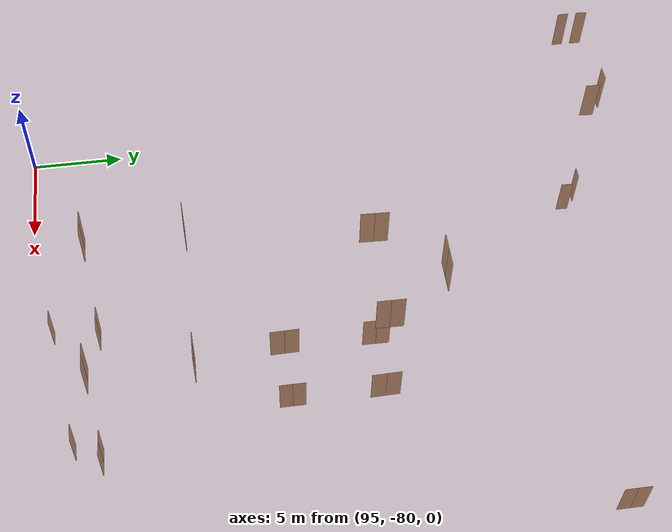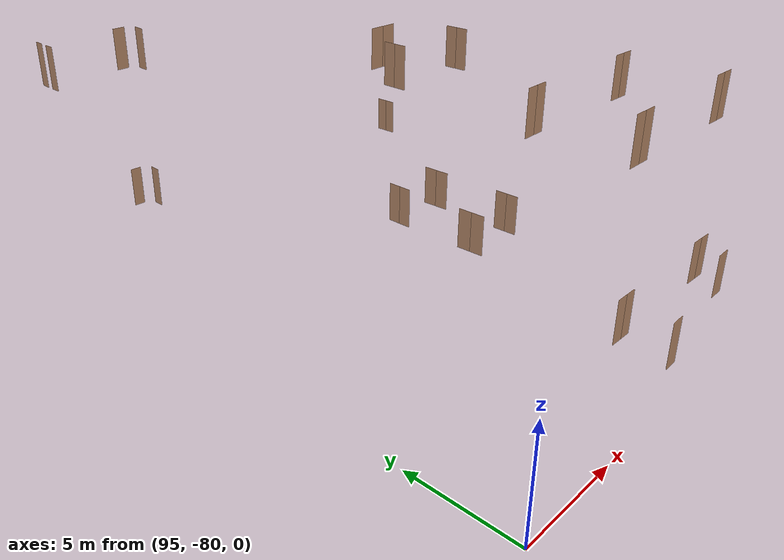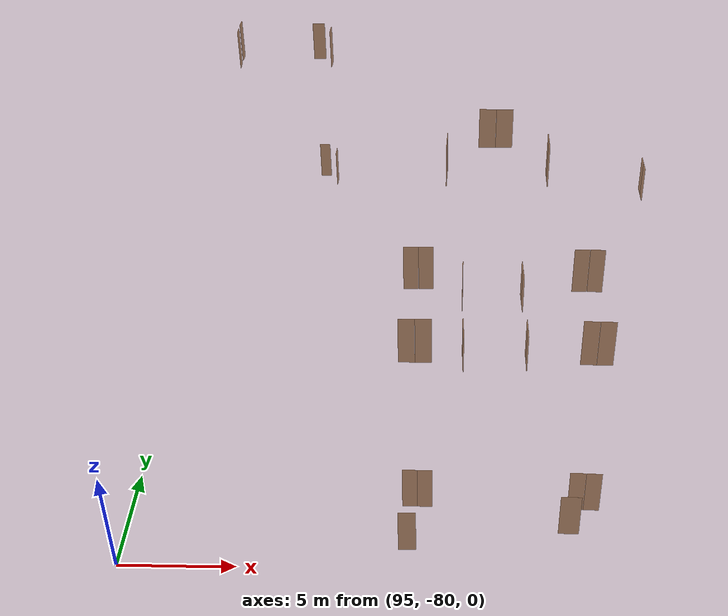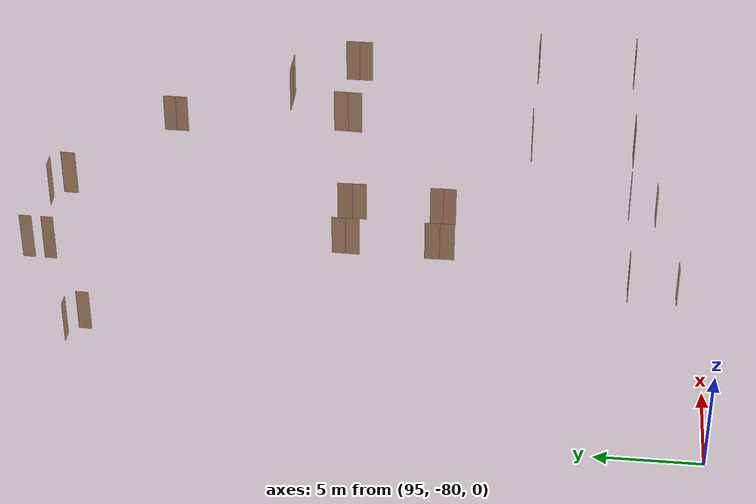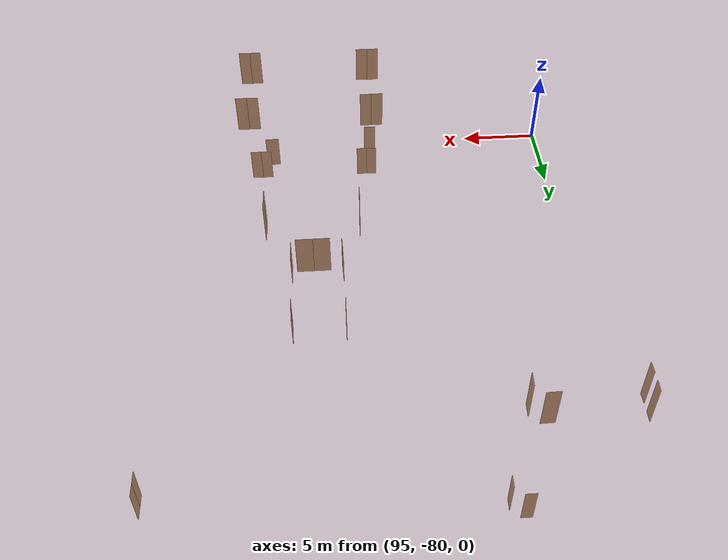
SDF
<sdf version="1.7">
 <world name="sim_world">
  <model name="TD2012CI">
   <pose>101.0331451901359 -49.4272154927263 0.0 0 0 0.0</pose>
   <link name="right">
    <pose>0 0 1.11 0 0 0</pose>
    <visual name="right_visual">
     <geometry><box><size>0.6053715363713843 0.03 2.2</size></box></geometry>
     <material>
      <ambient>0.5 0.25 0 0.6</ambient>
      <diffuse>0.5 0.25 0 0.6</diffuse>
      <pbr><metal><metalness>0.0</metalness></metal></pbr>
     </material>
    </visual>
    <collision name="right_collision">
     <geometry><box><size>0.6053715363713843 0.03 2.2</size></box></geometry>
     <surface><contact><collide_bitmask>0x02</collide_bitmask></contact></surface>
    </collision>
    <inertial>
     <mass>50.0</mass>
     <inertia><ixx>20.17041666666667</ixx><iyy>21.693644571036046</iyy><izz>1.5307279043693762</izz></inertia>
    </inertial>
   </link>
   <joint name="right_joint" type="revolute">
    <parent>world</parent>
    <child>right</child>
    <axis><xyz>0 0 -1</xyz><limit><lower>0</lower><upper>1.57</upper></limit></axis>
    <pose>0.30768576818569215 0 0 0 0 0</pose>
   </joint>
   <plugin name="register_component" filename="libregister_component.so">
    <component name="Door">
     <v_max_door>0.5</v_max_door>
     <a_max_door>0.3</a_max_door>
     <a_nom_door>0.15</a_nom_door>
     <dx_min_door>0.01</dx_min_door>
     <f_max_door>500.0</f_max_door>
     <ros_interface>true</ros_interface>
     <door name="TD2012CI" type="SwingDoor" left_joint_name="empty_joint" right_joint_name="right_joint"/>
    </component>
   </plugin>
  </model>
  <model name="TD2013CA">
   <pose>101.79936882906964 -50.17409163688117 0.0 0 0 1.5413766250854544</pose>
   <link name="right">
    <pose>0 0 1.11 0 0 0</pose>
    <visual name="right_visual">
     <geometry><box><size>0.6332346513899125 0.03 2.2</size></box></geometry>
     <material>
      <ambient>0.5 0.25 0 0.6</ambient>
      <diffuse>0.5 0.25 0 0.6</diffuse>
      <pbr><metal><metalness>0.0</metalness></metal></pbr>
     </material>
    </visual>
    <collision name="right_collision">
     <geometry><box><size>0.6332346513899125 0.03 2.2</size></box></geometry>
     <surface><contact><collide_bitmask>0x02</collide_bitmask></contact></surface>
    </collision>
    <inertial>
     <mass>50.0</mass>
     <inertia><ixx>20.17041666666667</ixx><iyy>21.837442182170438</iyy><izz>1.674525515503767</izz></inertia>
    </inertial>
   </link>
   <joint name="right_joint" type="revolute">
    <parent>world</parent>
    <child>right</child>
    <axis><xyz>0 0 -1</xyz><limit><lower>0</lower><upper>1.57</upper></limit></axis>
    <pose>0.32161732569495627 0 0 0 0 0</pose>
   </joint>
   <plugin name="register_component" filename="libregister_component.so">
    <component name="Door">
     <v_max_door>0.5</v_max_door>
     <a_max_door>0.3</a_max_door>
     <a_nom_door>0.15</a_nom_door>
     <dx_min_door>0.01</dx_min_door>
     <f_max_door>500.0</f_max_door>
     <ros_interface>true</ros_interface>
     <door name="TD2013CA" type="SwingDoor" left_joint_name="empty_joint" right_joint_name="right_joint"/>
    </component>
   </plugin>
  </model>
  <model name="TD2011CP1">
   <pose>120.17686281691562 -51.225544932021194 0.0 0 0 -1.5641731375628034</pose>
   <link name="right">
    <pose>0.3380386731190806 0 1.11 0 0 0</pose>
    <visual name="right_visual">
     <geometry><box><size>0.6660773462381612 0.03 2.2</size></box></geometry>
     <material>
      <ambient>0.5 0.25 0 0.6</ambient>
      <diffuse>0.5 0.25 0 0.6</diffuse>
      <pbr><metal><metalness>0.0</metalness></metal></pbr>
     </material>
    </visual>
    <collision name="right_collision">
     <geometry><box><size>0.6660773462381612 0.03 2.2</size></box></geometry>
     <surface><contact><collide_bitmask>0x02</collide_bitmask></contact></surface>
    </collision>
    <inertial>
     <mass>50.0</mass>
     <inertia><ixx>20.17041666666667</ixx><iyy>22.0152459632153</iyy><izz>1.8523292965486302</izz></inertia>
    </inertial>
   </link>
   <joint name="right_joint" type="revolute">
    <parent>world</parent>
    <child>right</child>
    <axis><xyz>0 0 -1</xyz><limit><lower>0</lower><upper>1.57</upper></limit></axis>
    <pose>0.3380386731190806 0 0 0 0 0</pose>
   </joint>
   <link name="left">
    <pose>-0.3380386731190806 0 1.11 0 0 0</pose>
    <visual name="left_visual">
     <geometry><box><size>0.6660773462381612 0.03 2.2</size></box></geometry>
     <material>
      <ambient>0.5 0.25 0 0.6</ambient>
      <diffuse>0.5 0.25 0 0.6</diffuse>
      <pbr><metal><metalness>0.0</metalness></metal></pbr>
     </material>
    </visual>
    <collision name="left_collision">
     <geometry><box><size>0.6660773462381612 0.03 2.2</size></box></geometry>
     <surface><contact><collide_bitmask>0x02</collide_bitmask></contact></surface>
    </collision>
    <inertial>
     <mass>50.0</mass>
     <inertia><ixx>20.17041666666667</ixx><iyy>22.0152459632153</iyy><izz>1.8523292965486302</izz></inertia>
    </inertial>
   </link>
   <joint name="left_joint" type="revolute">
    <parent>world</parent>
    <child>left</child>
    <axis><xyz>0 0 -1</xyz><limit><lower>-1.57</lower><upper>0</upper></limit></axis>
    <pose>-0.3380386731190806 0 0 0 0 0</pose>
   </joint>
   <plugin name="register_component" filename="libregister_component.so">
    <component name="Door">
     <v_max_door>0.5</v_max_door>
     <a_max_door>0.3</a_max_door>
     <a_nom_door>0.15</a_nom_door>
     <dx_min_door>0.01</dx_min_door>
     <f_max_door>500.0</f_max_door>
     <ros_interface>true</ros_interface>
     <door name="TD2011CP1" type="DoubleSwingDoor" left_joint_name="left_joint" right_joint_name="right_joint"/>
    </component>
   </plugin>
  </model>
  <model name="TD2003AA">
   <pose>109.39467455781474 -62.08049952299339 0.0 0 0 -1.5804696773764422</pose>
   <link name="right">
    <pose>0.3555885767495707 0 1.11 0 0 0</pose>
    <visual name="right_visual">
     <geometry><box><size>0.7011771534991413 0.03 2.2</size></box></geometry>
     <material>
      <ambient>0.5 0.25 0 0.6</ambient>
      <diffuse>0.5 0.25 0 0.6</diffuse>
      <pbr><metal><metalness>0.0</metalness></metal></pbr>
     </material>
    </visual>
    <collision name="right_collision">
     <geometry><box><size>0.7011771534991413 0.03 2.2</size></box></geometry>
     <surface><contact><collide_bitmask>0x02</collide_bitmask></contact></surface>
    </collision>
    <inertial>
     <mass>50.0</mass>
     <inertia><ixx>20.17041666666667</ixx><iyy>22.215205835788165</iyy><izz>2.0522891691214937</izz></inertia>
    </inertial>
   </link>
   <joint name="right_joint" type="revolute">
    <parent>world</parent>
    <child>right</child>
    <axis><xyz>0 0 -1</xyz><limit><lower>0</lower><upper>1.57</upper></limit></axis>
    <pose>0.3555885767495707 0 0 0 0 0</pose>
   </joint>
   <link name="left">
    <pose>-0.3555885767495707 0 1.11 0 0 0</pose>
    <visual name="left_visual">
     <geometry><box><size>0.7011771534991413 0.03 2.2</size></box></geometry>
     <material>
      <ambient>0.5 0.25 0 0.6</ambient>
      <diffuse>0.5 0.25 0 0.6</diffuse>
      <pbr><metal><metalness>0.0</metalness></metal></pbr>
     </material>
    </visual>
    <collision name="left_collision">
     <geometry><box><size>0.7011771534991413 0.03 2.2</size></box></geometry>
     <surface><contact><collide_bitmask>0x02</collide_bitmask></contact></surface>
    </collision>
    <inertial>
     <mass>50.0</mass>
     <inertia><ixx>20.17041666666667</ixx><iyy>22.215205835788165</iyy><izz>2.0522891691214937</izz></inertia>
    </inertial>
   </link>
   <joint name="left_joint" type="revolute">
    <parent>world</parent>
    <child>left</child>
    <axis><xyz>0 0 -1</xyz><limit><lower>-1.57</lower><upper>0</upper></limit></axis>
    <pose>-0.3555885767495707 0 0 0 0 0</pose>
   </joint>
   <plugin name="register_component" filename="libregister_component.so">
    <component name="Door">
     <v_max_door>0.5</v_max_door>
     <a_max_door>0.3</a_max_door>
     <a_nom_door>0.15</a_nom_door>
     <dx_min_door>0.01</dx_min_door>
     <f_max_door>500.0</f_max_door>
     <ros_interface>true</ros_interface>
     <door name="TD2003AA" type="DoubleSwingDoor" left_joint_name="left_joint" right_joint_name="right_joint"/>
    </component>
   </plugin>
  </model>
  <model name="TD2002AA">
   <pose>112.55227772977256 -62.0532626495431 0.0 0 0 1.5980504964411408</pose>
   <link name="right">
    <pose>0.384640636116833 0 1.11 0 0 0</pose>
    <visual name="right_visual">
     <geometry><box><size>0.759281272233666 0.03 2.2</size></box></geometry>
     <material>
      <ambient>0.5 0.25 0 0.6</ambient>
      <diffuse>0.5 0.25 0 0.6</diffuse>
      <pbr><metal><metalness>0.0</metalness></metal></pbr>
     </material>
    </visual>
    <collision name="right_collision">
     <geometry><box><size>0.759281272233666 0.03 2.2</size></box></geometry>
     <surface><contact><collide_bitmask>0x02</collide_bitmask></contact></surface>
    </collision>
    <inertial>
     <mass>50.0</mass>
     <inertia><ixx>20.17041666666667</ixx><iyy>22.568783543186562</iyy><izz>2.405866876519894</izz></inertia>
    </inertial>
   </link>
   <joint name="right_joint" type="revolute">
    <parent>world</parent>
    <child>right</child>
    <axis><xyz>0 0 -1</xyz><limit><lower>0</lower><upper>1.57</upper></limit></axis>
    <pose>0.384640636116833 0 0 0 0 0</pose>
   </joint>
   <link name="left">
    <pose>-0.384640636116833 0 1.11 0 0 0</pose>
    <visual name="left_visual">
     <geometry><box><size>0.759281272233666 0.03 2.2</size></box></geometry>
     <material>
      <ambient>0.5 0.25 0 0.6</ambient>
      <diffuse>0.5 0.25 0 0.6</diffuse>
      <pbr><metal><metalness>0.0</metalness></metal></pbr>
     </material>
    </visual>
    <collision name="left_collision">
     <geometry><box><size>0.759281272233666 0.03 2.2</size></box></geometry>
     <surface><contact><collide_bitmask>0x02</collide_bitmask></contact></surface>
    </collision>
    <inertial>
     <mass>50.0</mass>
     <inertia><ixx>20.17041666666667</ixx><iyy>22.568783543186562</iyy><izz>2.405866876519894</izz></inertia>
    </inertial>
   </link>
   <joint name="left_joint" type="revolute">
    <parent>world</parent>
    <child>left</child>
    <axis><xyz>0 0 -1</xyz><limit><lower>-1.57</lower><upper>0</upper></limit></axis>
    <pose>-0.384640636116833 0 0 0 0 0</pose>
   </joint>
   <plugin name="register_component" filename="libregister_component.so">
    <component name="Door">
     <v_max_door>0.5</v_max_door>
     <a_max_door>0.3</a_max_door>
     <a_nom_door>0.15</a_nom_door>
     <dx_min_door>0.01</dx_min_door>
     <f_max_door>500.0</f_max_door>
     <ros_interface>true</ros_interface>
     <door name="TD2002AA" type="DoubleSwingDoor" left_joint_name="left_joint" right_joint_name="right_joint"/>
    </component>
   </plugin>
  </model>
  <model name="TD2048AA">
   <pose>109.40632345548323 -66.90460207556437 0.0 0 0 -1.5465537573246375</pose>
   <link name="right">
    <pose>0.3821804307386069 0 1.11 0 0 0</pose>
    <visual name="right_visual">
     <geometry><box><size>0.7543608614772138 0.03 2.2</size></box></geometry>
     <material>
      <ambient>0.5 0.25 0 0.6</ambient>
      <diffuse>0.5 0.25 0 0.6</diffuse>
      <pbr><metal><metalness>0.0</metalness></metal></pbr>
     </material>
    </visual>
    <collision name="right_collision">
     <geometry><box><size>0.7543608614772138 0.03 2.2</size></box></geometry>
     <surface><contact><collide_bitmask>0x02</collide_bitmask></contact></surface>
    </collision>
    <inertial>
     <mass>50.0</mass>
     <inertia><ixx>20.17041666666667</ixx><iyy>22.537751288869355</iyy><izz>2.3748346222026844</izz></inertia>
    </inertial>
   </link>
   <joint name="right_joint" type="revolute">
    <parent>world</parent>
    <child>right</child>
    <axis><xyz>0 0 -1</xyz><limit><lower>0</lower><upper>1.57</upper></limit></axis>
    <pose>0.3821804307386069 0 0 0 0 0</pose>
   </joint>
   <link name="left">
    <pose>-0.3821804307386069 0 1.11 0 0 0</pose>
    <visual name="left_visual">
     <geometry><box><size>0.7543608614772138 0.03 2.2</size></box></geometry>
     <material>
      <ambient>0.5 0.25 0 0.6</ambient>
      <diffuse>0.5 0.25 0 0.6</diffuse>
      <pbr><metal><metalness>0.0</metalness></metal></pbr>
     </material>
    </visual>
    <collision name="left_collision">
     <geometry><box><size>0.7543608614772138 0.03 2.2</size></box></geometry>
     <surface><contact><collide_bitmask>0x02</collide_bitmask></contact></surface>
    </collision>
    <inertial>
     <mass>50.0</mass>
     <inertia><ixx>20.17041666666667</ixx><iyy>22.537751288869355</iyy><izz>2.3748346222026844</izz></inertia>
    </inertial>
   </link>
   <joint name="left_joint" type="revolute">
    <parent>world</parent>
    <child>left</child>
    <axis><xyz>0 0 -1</xyz><limit><lower>-1.57</lower><upper>0</upper></limit></axis>
    <pose>-0.3821804307386069 0 0 0 0 0</pose>
   </joint>
   <plugin name="register_component" filename="libregister_component.so">
    <component name="Door">
     <v_max_door>0.5</v_max_door>
     <a_max_door>0.3</a_max_door>
     <a_nom_door>0.15</a_nom_door>
     <dx_min_door>0.01</dx_min_door>
     <f_max_door>500.0</f_max_door>
     <ros_interface>true</ros_interface>
     <door name="TD2048AA" type="DoubleSwingDoor" left_joint_name="left_joint" right_joint_name="right_joint"/>
    </component>
   </plugin>
  </model>
  <model name="TD2047AA">
   <pose>112.57834746896705 -66.83982612436739 0.0 0 0 1.5783168461663433</pose>
   <link name="right">
    <pose>0.33948855459902605 0 1.11 0 0 0</pose>
    <visual name="right_visual">
     <geometry><box><size>0.6689771091980521 0.03 2.2</size></box></geometry>
     <material>
      <ambient>0.5 0.25 0 0.6</ambient>
      <diffuse>0.5 0.25 0 0.6</diffuse>
      <pbr><metal><metalness>0.0</metalness></metal></pbr>
     </material>
    </visual>
    <collision name="right_collision">
     <geometry><box><size>0.6689771091980521 0.03 2.2</size></box></geometry>
     <surface><contact><collide_bitmask>0x02</collide_bitmask></contact></surface>
    </collision>
    <inertial>
     <mass>50.0</mass>
     <inertia><ixx>20.17041666666667</ixx><iyy>22.031376552629098</iyy><izz>1.8684598859624273</izz></inertia>
    </inertial>
   </link>
   <joint name="right_joint" type="revolute">
    <parent>world</parent>
    <child>right</child>
    <axis><xyz>0 0 -1</xyz><limit><lower>0</lower><upper>1.57</upper></limit></axis>
    <pose>0.33948855459902605 0 0 0 0 0</pose>
   </joint>
   <link name="left">
    <pose>-0.33948855459902605 0 1.11 0 0 0</pose>
    <visual name="left_visual">
     <geometry><box><size>0.6689771091980521 0.03 2.2</size></box></geometry>
     <material>
      <ambient>0.5 0.25 0 0.6</ambient>
      <diffuse>0.5 0.25 0 0.6</diffuse>
      <pbr><metal><metalness>0.0</metalness></metal></pbr>
     </material>
    </visual>
    <collision name="left_collision">
     <geometry><box><size>0.6689771091980521 0.03 2.2</size></box></geometry>
     <surface><contact><collide_bitmask>0x02</collide_bitmask></contact></surface>
    </collision>
    <inertial>
     <mass>50.0</mass>
     <inertia><ixx>20.17041666666667</ixx><iyy>22.031376552629098</iyy><izz>1.8684598859624273</izz></inertia>
    </inertial>
   </link>
   <joint name="left_joint" type="revolute">
    <parent>world</parent>
    <child>left</child>
    <axis><xyz>0 0 -1</xyz><limit><lower>-1.57</lower><upper>0</upper></limit></axis>
    <pose>-0.33948855459902605 0 0 0 0 0</pose>
   </joint>
   <plugin name="register_component" filename="libregister_component.so">
    <component name="Door">
     <v_max_door>0.5</v_max_door>
     <a_max_door>0.3</a_max_door>
     <a_nom_door>0.15</a_nom_door>
     <dx_min_door>0.01</dx_min_door>
     <f_max_door>500.0</f_max_door>
     <ros_interface>true</ros_interface>
     <door name="TD2047AA" type="DoubleSwingDoor" left_joint_name="left_joint" right_joint_name="right_joint"/>
    </component>
   </plugin>
  </model>
  <model name="TD2006CI">
   <pose>107.39730383812659 -76.51110457595095 0.0 0 0 -0.01999491726999864</pose>
   <link name="right">
    <pose>0.32499401817698503 0 1.11 0 0 0</pose>
    <visual name="right_visual">
     <geometry><box><size>0.6399880363539701 0.03 2.2</size></box></geometry>
     <material>
      <ambient>0.5 0.25 0 0.6</ambient>
      <diffuse>0.5 0.25 0 0.6</diffuse>
      <pbr><metal><metalness>0.0</metalness></metal></pbr>
     </material>
    </visual>
    <collision name="right_collision">
     <geometry><box><size>0.6399880363539701 0.03 2.2</size></box></geometry>
     <surface><contact><collide_bitmask>0x02</collide_bitmask></contact></surface>
    </collision>
    <inertial>
     <mass>50.0</mass>
     <inertia><ixx>20.17041666666667</ixx><iyy>21.87326952781755</iyy><izz>1.7103528611508774</izz></inertia>
    </inertial>
   </link>
   <joint name="right_joint" type="revolute">
    <parent>world</parent>
    <child>right</child>
    <axis><xyz>0 0 -1</xyz><limit><lower>0</lower><upper>1.57</upper></limit></axis>
    <pose>0.32499401817698503 0 0 0 0 0</pose>
   </joint>
   <link name="left">
    <pose>-0.32499401817698503 0 1.11 0 0 0</pose>
    <visual name="left_visual">
     <geometry><box><size>0.6399880363539701 0.03 2.2</size></box></geometry>
     <material>
      <ambient>0.5 0.25 0 0.6</ambient>
      <diffuse>0.5 0.25 0 0.6</diffuse>
      <pbr><metal><metalness>0.0</metalness></metal></pbr>
     </material>
    </visual>
    <collision name="left_collision">
     <geometry><box><size>0.6399880363539701 0.03 2.2</size></box></geometry>
     <surface><contact><collide_bitmask>0x02</collide_bitmask></contact></surface>
    </collision>
    <inertial>
     <mass>50.0</mass>
     <inertia><ixx>20.17041666666667</ixx><iyy>21.87326952781755</iyy><izz>1.7103528611508774</izz></inertia>
    </inertial>
   </link>
   <joint name="left_joint" type="revolute">
    <parent>world</parent>
    <child>left</child>
    <axis><xyz>0 0 -1</xyz><limit><lower>-1.57</lower><upper>0</upper></limit></axis>
    <pose>-0.32499401817698503 0 0 0 0 0</pose>
   </joint>
   <plugin name="register_component" filename="libregister_component.so">
    <component name="Door">
     <v_max_door>0.5</v_max_door>
     <a_max_door>0.3</a_max_door>
     <a_nom_door>0.15</a_nom_door>
     <dx_min_door>0.01</dx_min_door>
     <f_max_door>500.0</f_max_door>
     <ros_interface>true</ros_interface>
     <door name="TD2006CI" type="DoubleSwingDoor" left_joint_name="left_joint" right_joint_name="right_joint"/>
    </component>
   </plugin>
  </model>
  <model name="TD2004CI">
   <pose>107.03772548533681 -78.92855384816954 0.0 0 0 -3.1301002756277767</pose>
   <link name="right">
    <pose>0 0 1.11 0 0 0</pose>
    <visual name="right_visual">
     <geometry><box><size>0.7438838438732581 0.03 2.2</size></box></geometry>
     <material>
      <ambient>0.5 0.25 0 0.6</ambient>
      <diffuse>0.5 0.25 0 0.6</diffuse>
      <pbr><metal><metalness>0.0</metalness></metal></pbr>
     </material>
    </visual>
    <collision name="right_collision">
     <geometry><box><size>0.7438838438732581 0.03 2.2</size></box></geometry>
     <surface><contact><collide_bitmask>0x02</collide_bitmask></contact></surface>
    </collision>
    <inertial>
     <mass>50.0</mass>
     <inertia><ixx>20.17041666666667</ixx><iyy>22.47234655489856</iyy><izz>2.3094298882318913</izz></inertia>
    </inertial>
   </link>
   <joint name="right_joint" type="revolute">
    <parent>world</parent>
    <child>right</child>
    <axis><xyz>0 0 1</xyz><limit><lower>0</lower><upper>1.57</upper></limit></axis>
    <pose>0.37694192193662907 0 0 0 0 0</pose>
   </joint>
   <plugin name="register_component" filename="libregister_component.so">
    <component name="Door">
     <v_max_door>0.5</v_max_door>
     <a_max_door>0.3</a_max_door>
     <a_nom_door>0.15</a_nom_door>
     <dx_min_door>0.01</dx_min_door>
     <f_max_door>500.0</f_max_door>
     <ros_interface>true</ros_interface>
     <door name="TD2004CI" type="SwingDoor" left_joint_name="empty_joint" right_joint_name="right_joint"/>
    </component>
   </plugin>
  </model>
  <model name="TD2007CI">
   <pose>113.87501118227308 -77.92768011159583 0.0 0 0 -3.130096002835818</pose>
   <link name="right">
    <pose>0 0 1.11 0 0 0</pose>
    <visual name="right_visual">
     <geometry><box><size>0.8783152083204939 0.03 2.2</size></box></geometry>
     <material>
      <ambient>0.5 0.25 0 0.6</ambient>
      <diffuse>0.5 0.25 0 0.6</diffuse>
      <pbr><metal><metalness>0.0</metalness></metal></pbr>
     </material>
    </visual>
    <collision name="right_collision">
     <geometry><box><size>0.8783152083204939 0.03 2.2</size></box></geometry>
     <surface><contact><collide_bitmask>0x02</collide_bitmask></contact></surface>
    </collision>
    <inertial>
     <mass>50.0</mass>
     <inertia><ixx>20.17041666666667</ixx><iyy>23.380990021529474</iyy><izz>3.2180733548628027</izz></inertia>
    </inertial>
   </link>
   <joint name="right_joint" type="revolute">
    <parent>world</parent>
    <child>right</child>
    <axis><xyz>0 0 1</xyz><limit><lower>0</lower><upper>1.57</upper></limit></axis>
    <pose>0.44415760416024697 0 0 0 0 0</pose>
   </joint>
   <plugin name="register_component" filename="libregister_component.so">
    <component name="Door">
     <v_max_door>0.5</v_max_door>
     <a_max_door>0.3</a_max_door>
     <a_nom_door>0.15</a_nom_door>
     <dx_min_door>0.01</dx_min_door>
     <f_max_door>500.0</f_max_door>
     <ros_interface>true</ros_interface>
     <door name="TD2007CI" type="SwingDoor" left_joint_name="empty_joint" right_joint_name="right_joint"/>
    </component>
   </plugin>
  </model>
  <model name="TD2010CP">
   <pose>114.61010375942227 -76.55956309245626 0.0 0 0 -0.03701349063309876</pose>
   <link name="right">
    <pose>0.3448157269059257 0 1.11 0 0 0</pose>
    <visual name="right_visual">
     <geometry><box><size>0.6796314538118514 0.03 2.2</size></box></geometry>
     <material>
      <ambient>0.5 0.25 0 0.6</ambient>
      <diffuse>0.5 0.25 0 0.6</diffuse>
      <pbr><metal><metalness>0.0</metalness></metal></pbr>
     </material>
    </visual>
    <collision name="right_collision">
     <geometry><box><size>0.6796314538118514 0.03 2.2</size></box></geometry>
     <surface><contact><collide_bitmask>0x02</collide_bitmask></contact></surface>
    </collision>
    <inertial>
     <mass>50.0</mass>
     <inertia><ixx>20.17041666666667</ixx><iyy>22.091245470876718</iyy><izz>1.928328804210045</izz></inertia>
    </inertial>
   </link>
   <joint name="right_joint" type="revolute">
    <parent>world</parent>
    <child>right</child>
    <axis><xyz>0 0 -1</xyz><limit><lower>0</lower><upper>1.57</upper></limit></axis>
    <pose>0.3448157269059257 0 0 0 0 0</pose>
   </joint>
   <link name="left">
    <pose>-0.3448157269059257 0 1.11 0 0 0</pose>
    <visual name="left_visual">
     <geometry><box><size>0.6796314538118514 0.03 2.2</size></box></geometry>
     <material>
      <ambient>0.5 0.25 0 0.6</ambient>
      <diffuse>0.5 0.25 0 0.6</diffuse>
      <pbr><metal><metalness>0.0</metalness></metal></pbr>
     </material>
    </visual>
    <collision name="left_collision">
     <geometry><box><size>0.6796314538118514 0.03 2.2</size></box></geometry>
     <surface><contact><collide_bitmask>0x02</collide_bitmask></contact></surface>
    </collision>
    <inertial>
     <mass>50.0</mass>
     <inertia><ixx>20.17041666666667</ixx><iyy>22.091245470876718</iyy><izz>1.928328804210045</izz></inertia>
    </inertial>
   </link>
   <joint name="left_joint" type="revolute">
    <parent>world</parent>
    <child>left</child>
    <axis><xyz>0 0 -1</xyz><limit><lower>-1.57</lower><upper>0</upper></limit></axis>
    <pose>-0.3448157269059257 0 0 0 0 0</pose>
   </joint>
   <plugin name="register_component" filename="libregister_component.so">
    <component name="Door">
     <v_max_door>0.5</v_max_door>
     <a_max_door>0.3</a_max_door>
     <a_nom_door>0.15</a_nom_door>
     <dx_min_door>0.01</dx_min_door>
     <f_max_door>500.0</f_max_door>
     <ros_interface>true</ros_interface>
     <door name="TD2010CP" type="DoubleSwingDoor" left_joint_name="left_joint" right_joint_name="right_joint"/>
    </component>
   </plugin>
  </model>
  <model name="bano19">
   <pose>96.61283543717667 -49.501921607688836 8.0 0 0 1.5239625312499971</pose>
   <link name="right">
    <pose>0 0 1.11 0 0 0</pose>
    <visual name="right_visual">
     <geometry><box><size>0.5516831153719108 0.03 2.2</size></box></geometry>
     <material>
      <ambient>0.5 0.25 0 0.6</ambient>
      <diffuse>0.5 0.25 0 0.6</diffuse>
      <pbr><metal><metalness>0.0</metalness></metal></pbr>
     </material>
    </visual>
    <collision name="right_collision">
     <geometry><box><size>0.5516831153719108 0.03 2.2</size></box></geometry>
     <surface><contact><collide_bitmask>0x02</collide_bitmask></contact></surface>
    </collision>
    <inertial>
     <mass>50.0</mass>
     <inertia><ixx>20.17041666666667</ixx><iyy>21.43480941577691</iyy><izz>1.271892749110238</izz></inertia>
    </inertial>
   </link>
   <joint name="right_joint" type="revolute">
    <parent>world</parent>
    <child>right</child>
    <axis><xyz>0 0 1</xyz><limit><lower>0</lower><upper>1.57</upper></limit></axis>
    <pose>0.2808415576859554 0 0 0 0 0</pose>
   </joint>
   <plugin name="register_component" filename="libregister_component.so">
    <component name="Door">
     <v_max_door>0.5</v_max_door>
     <a_max_door>0.3</a_max_door>
     <a_nom_door>0.15</a_nom_door>
     <dx_min_door>0.01</dx_min_door>
     <f_max_door>500.0</f_max_door>
     <ros_interface>true</ros_interface>
     <door name="bano19" type="SwingDoor" left_joint_name="empty_joint" right_joint_name="right_joint"/>
    </component>
   </plugin>
  </model>
  <model name="bano20">
   <pose>96.60297657312375 -50.4766449259702 8.0 0 0 1.5826926319735042</pose>
   <link name="right">
    <pose>0 0 1.11 0 0 0</pose>
    <visual name="right_visual">
     <geometry><box><size>0.5302247300390378 0.03 2.2</size></box></geometry>
     <material>
      <ambient>0.5 0.25 0 0.6</ambient>
      <diffuse>0.5 0.25 0 0.6</diffuse>
      <pbr><metal><metalness>0.0</metalness></metal></pbr>
     </material>
    </visual>
    <collision name="right_collision">
     <geometry><box><size>0.5302247300390378 0.03 2.2</size></box></geometry>
     <surface><contact><collide_bitmask>0x02</collide_bitmask></contact></surface>
    </collision>
    <inertial>
     <mass>50.0</mass>
     <inertia><ixx>20.17041666666667</ixx><iyy>21.33807610143738</iyy><izz>1.1751594347707106</izz></inertia>
    </inertial>
   </link>
   <joint name="right_joint" type="revolute">
    <parent>world</parent>
    <child>right</child>
    <axis><xyz>0 0 1</xyz><limit><lower>0</lower><upper>1.57</upper></limit></axis>
    <pose>0.2701123650195189 0 0 0 0 0</pose>
   </joint>
   <plugin name="register_component" filename="libregister_component.so">
    <component name="Door">
     <v_max_door>0.5</v_max_door>
     <a_max_door>0.3</a_max_door>
     <a_nom_door>0.15</a_nom_door>
     <dx_min_door>0.01</dx_min_door>
     <f_max_door>500.0</f_max_door>
     <ros_interface>true</ros_interface>
     <door name="bano20" type="SwingDoor" left_joint_name="empty_joint" right_joint_name="right_joint"/>
    </component>
   </plugin>
  </model>
  <model name="TD2107AL1">
   <pose>113.41431357541177 -62.38264448825677 8.0 0 0 1.5657095291341885</pose>
   <link name="right">
    <pose>0.33248173329182623 0 1.11 0 0 0</pose>
    <visual name="right_visual">
     <geometry><box><size>0.6549634665836525 0.03 2.2</size></box></geometry>
     <material>
      <ambient>0.5 0.25 0 0.6</ambient>
      <diffuse>0.5 0.25 0 0.6</diffuse>
      <pbr><metal><metalness>0.0</metalness></metal></pbr>
     </material>
    </visual>
    <collision name="right_collision">
     <geometry><box><size>0.6549634665836525 0.03 2.2</size></box></geometry>
     <surface><contact><collide_bitmask>0x02</collide_bitmask></contact></surface>
    </collision>
    <inertial>
     <mass>50.0</mass>
     <inertia><ixx>20.17041666666667</ixx><iyy>21.95407142733032</iyy><izz>1.7911547606636469</izz></inertia>
    </inertial>
   </link>
   <joint name="right_joint" type="revolute">
    <parent>world</parent>
    <child>right</child>
    <axis><xyz>0 0 -1</xyz><limit><lower>0</lower><upper>1.57</upper></limit></axis>
    <pose>0.33248173329182623 0 0 0 0 0</pose>
   </joint>
   <link name="left">
    <pose>-0.33248173329182623 0 1.11 0 0 0</pose>
    <visual name="left_visual">
     <geometry><box><size>0.6549634665836525 0.03 2.2</size></box></geometry>
     <material>
      <ambient>0.5 0.25 0 0.6</ambient>
      <diffuse>0.5 0.25 0 0.6</diffuse>
      <pbr><metal><metalness>0.0</metalness></metal></pbr>
     </material>
    </visual>
    <collision name="left_collision">
     <geometry><box><size>0.6549634665836525 0.03 2.2</size></box></geometry>
     <surface><contact><collide_bitmask>0x02</collide_bitmask></contact></surface>
    </collision>
    <inertial>
     <mass>50.0</mass>
     <inertia><ixx>20.17041666666667</ixx><iyy>21.95407142733032</iyy><izz>1.7911547606636469</izz></inertia>
    </inertial>
   </link>
   <joint name="left_joint" type="revolute">
    <parent>world</parent>
    <child>left</child>
    <axis><xyz>0 0 -1</xyz><limit><lower>-1.57</lower><upper>0</upper></limit></axis>
    <pose>-0.33248173329182623 0 0 0 0 0</pose>
   </joint>
   <plugin name="register_component" filename="libregister_component.so">
    <component name="Door">
     <v_max_door>0.5</v_max_door>
     <a_max_door>0.3</a_max_door>
     <a_nom_door>0.15</a_nom_door>
     <dx_min_door>0.01</dx_min_door>
     <f_max_door>500.0</f_max_door>
     <ros_interface>true</ros_interface>
     <door name="TD2107AL1" type="DoubleSwingDoor" left_joint_name="left_joint" right_joint_name="right_joint"/>
    </component>
   </plugin>
  </model>
  <model name="TD2107AL2">
   <pose>114.6058632095701 -71.40141686040613 8.0 0 0 3.125722063086298</pose>
   <link name="right">
    <pose>0.3272724999890475 0 1.11 0 0 0</pose>
    <visual name="right_visual">
     <geometry><box><size>0.644544999978095 0.03 2.2</size></box></geometry>
     <material>
      <ambient>0.5 0.25 0 0.6</ambient>
      <diffuse>0.5 0.25 0 0.6</diffuse>
      <pbr><metal><metalness>0.0</metalness></metal></pbr>
     </material>
    </visual>
    <collision name="right_collision">
     <geometry><box><size>0.644544999978095 0.03 2.2</size></box></geometry>
     <surface><contact><collide_bitmask>0x02</collide_bitmask></contact></surface>
    </collision>
    <inertial>
     <mass>50.0</mass>
     <inertia><ixx>20.17041666666667</ixx><iyy>21.89765940415318</iyy><izz>1.7347427374865105</izz></inertia>
    </inertial>
   </link>
   <joint name="right_joint" type="revolute">
    <parent>world</parent>
    <child>right</child>
    <axis><xyz>0 0 -1</xyz><limit><lower>0</lower><upper>1.57</upper></limit></axis>
    <pose>0.3272724999890475 0 0 0 0 0</pose>
   </joint>
   <link name="left">
    <pose>-0.3272724999890475 0 1.11 0 0 0</pose>
    <visual name="left_visual">
     <geometry><box><size>0.644544999978095 0.03 2.2</size></box></geometry>
     <material>
      <ambient>0.5 0.25 0 0.6</ambient>
      <diffuse>0.5 0.25 0 0.6</diffuse>
      <pbr><metal><metalness>0.0</metalness></metal></pbr>
     </material>
    </visual>
    <collision name="left_collision">
     <geometry><box><size>0.644544999978095 0.03 2.2</size></box></geometry>
     <surface><contact><collide_bitmask>0x02</collide_bitmask></contact></surface>
    </collision>
    <inertial>
     <mass>50.0</mass>
     <inertia><ixx>20.17041666666667</ixx><iyy>21.89765940415318</iyy><izz>1.7347427374865105</izz></inertia>
    </inertial>
   </link>
   <joint name="left_joint" type="revolute">
    <parent>world</parent>
    <child>left</child>
    <axis><xyz>0 0 -1</xyz><limit><lower>-1.57</lower><upper>0</upper></limit></axis>
    <pose>-0.3272724999890475 0 0 0 0 0</pose>
   </joint>
   <plugin name="register_component" filename="libregister_component.so">
    <component name="Door">
     <v_max_door>0.5</v_max_door>
     <a_max_door>0.3</a_max_door>
     <a_nom_door>0.15</a_nom_door>
     <dx_min_door>0.01</dx_min_door>
     <f_max_door>500.0</f_max_door>
     <ros_interface>true</ros_interface>
     <door name="TD2107AL2" type="DoubleSwingDoor" left_joint_name="left_joint" right_joint_name="right_joint"/>
    </component>
   </plugin>
  </model>
  <model name="TD2110AL2">
   <pose>107.34913462446937 -71.35679158429605 8.0 0 0 -3.1162915986819084</pose>
   <link name="right">
    <pose>0.3252623310902839 0 1.11 0 0 0</pose>
    <visual name="right_visual">
     <geometry><box><size>0.6405246621805678 0.03 2.2</size></box></geometry>
     <material>
      <ambient>0.5 0.25 0 0.6</ambient>
      <diffuse>0.5 0.25 0 0.6</diffuse>
      <pbr><metal><metalness>0.0</metalness></metal></pbr>
     </material>
    </visual>
    <collision name="right_collision">
     <geometry><box><size>0.6405246621805678 0.03 2.2</size></box></geometry>
     <surface><contact><collide_bitmask>0x02</collide_bitmask></contact></surface>
    </collision>
    <inertial>
     <mass>50.0</mass>
     <inertia><ixx>20.17041666666667</ixx><iyy>21.876132678589716</iyy><izz>1.713216011923044</izz></inertia>
    </inertial>
   </link>
   <joint name="right_joint" type="revolute">
    <parent>world</parent>
    <child>right</child>
    <axis><xyz>0 0 -1</xyz><limit><lower>0</lower><upper>1.57</upper></limit></axis>
    <pose>0.3252623310902839 0 0 0 0 0</pose>
   </joint>
   <link name="left">
    <pose>-0.3252623310902839 0 1.11 0 0 0</pose>
    <visual name="left_visual">
     <geometry><box><size>0.6405246621805678 0.03 2.2</size></box></geometry>
     <material>
      <ambient>0.5 0.25 0 0.6</ambient>
      <diffuse>0.5 0.25 0 0.6</diffuse>
      <pbr><metal><metalness>0.0</metalness></metal></pbr>
     </material>
    </visual>
    <collision name="left_collision">
     <geometry><box><size>0.6405246621805678 0.03 2.2</size></box></geometry>
     <surface><contact><collide_bitmask>0x02</collide_bitmask></contact></surface>
    </collision>
    <inertial>
     <mass>50.0</mass>
     <inertia><ixx>20.17041666666667</ixx><iyy>21.876132678589716</iyy><izz>1.713216011923044</izz></inertia>
    </inertial>
   </link>
   <joint name="left_joint" type="revolute">
    <parent>world</parent>
    <child>left</child>
    <axis><xyz>0 0 -1</xyz><limit><lower>-1.57</lower><upper>0</upper></limit></axis>
    <pose>-0.3252623310902839 0 0 0 0 0</pose>
   </joint>
   <plugin name="register_component" filename="libregister_component.so">
    <component name="Door">
     <v_max_door>0.5</v_max_door>
     <a_max_door>0.3</a_max_door>
     <a_nom_door>0.15</a_nom_door>
     <dx_min_door>0.01</dx_min_door>
     <f_max_door>500.0</f_max_door>
     <ros_interface>true</ros_interface>
     <door name="TD2110AL2" type="DoubleSwingDoor" left_joint_name="left_joint" right_joint_name="right_joint"/>
    </component>
   </plugin>
  </model>
  <model name="TD2109AL">
   <pose>107.33063044133087 -76.1974517989371 8.0 0 0 -0.005031917519287677</pose>
   <link name="right">
    <pose>0.3359832755734411 0 1.11 0 0 0</pose>
    <visual name="right_visual">
     <geometry><box><size>0.6619665511468822 0.03 2.2</size></box></geometry>
     <material>
      <ambient>0.5 0.25 0 0.6</ambient>
      <diffuse>0.5 0.25 0 0.6</diffuse>
      <pbr><metal><metalness>0.0</metalness></metal></pbr>
     </material>
    </visual>
    <collision name="right_collision">
     <geometry><box><size>0.6619665511468822 0.03 2.2</size></box></geometry>
     <surface><contact><collide_bitmask>0x02</collide_bitmask></contact></surface>
    </collision>
    <inertial>
     <mass>50.0</mass>
     <inertia><ixx>20.17041666666667</ixx><iyy>21.992498811822077</iyy><izz>1.8295821451554077</izz></inertia>
    </inertial>
   </link>
   <joint name="right_joint" type="revolute">
    <parent>world</parent>
    <child>right</child>
    <axis><xyz>0 0 -1</xyz><limit><lower>0</lower><upper>1.57</upper></limit></axis>
    <pose>0.3359832755734411 0 0 0 0 0</pose>
   </joint>
   <link name="left">
    <pose>-0.3359832755734411 0 1.11 0 0 0</pose>
    <visual name="left_visual">
     <geometry><box><size>0.6619665511468822 0.03 2.2</size></box></geometry>
     <material>
      <ambient>0.5 0.25 0 0.6</ambient>
      <diffuse>0.5 0.25 0 0.6</diffuse>
      <pbr><metal><metalness>0.0</metalness></metal></pbr>
     </material>
    </visual>
    <collision name="left_collision">
     <geometry><box><size>0.6619665511468822 0.03 2.2</size></box></geometry>
     <surface><contact><collide_bitmask>0x02</collide_bitmask></contact></surface>
    </collision>
    <inertial>
     <mass>50.0</mass>
     <inertia><ixx>20.17041666666667</ixx><iyy>21.992498811822077</iyy><izz>1.8295821451554077</izz></inertia>
    </inertial>
   </link>
   <joint name="left_joint" type="revolute">
    <parent>world</parent>
    <child>left</child>
    <axis><xyz>0 0 -1</xyz><limit><lower>-1.57</lower><upper>0</upper></limit></axis>
    <pose>-0.3359832755734411 0 0 0 0 0</pose>
   </joint>
   <plugin name="register_component" filename="libregister_component.so">
    <component name="Door">
     <v_max_door>0.5</v_max_door>
     <a_max_door>0.3</a_max_door>
     <a_nom_door>0.15</a_nom_door>
     <dx_min_door>0.01</dx_min_door>
     <f_max_door>500.0</f_max_door>
     <ros_interface>true</ros_interface>
     <door name="TD2109AL" type="DoubleSwingDoor" left_joint_name="left_joint" right_joint_name="right_joint"/>
    </component>
   </plugin>
  </model>
  <model name="TD2108AL">
   <pose>114.58571537129035 -76.21364939362331 8.0 0 0 -0.021201906204535447</pose>
   <link name="right">
    <pose>0.32730515985765785 0 1.11 0 0 0</pose>
    <visual name="right_visual">
     <geometry><box><size>0.6446103197153157 0.03 2.2</size></box></geometry>
     <material>
      <ambient>0.5 0.25 0 0.6</ambient>
      <diffuse>0.5 0.25 0 0.6</diffuse>
      <pbr><metal><metalness>0.0</metalness></metal></pbr>
     </material>
    </visual>
    <collision name="right_collision">
     <geometry><box><size>0.6446103197153157 0.03 2.2</size></box></geometry>
     <surface><contact><collide_bitmask>0x02</collide_bitmask></contact></surface>
    </collision>
    <inertial>
     <mass>50.0</mass>
     <inertia><ixx>20.17041666666667</ixx><iyy>21.898010267847845</iyy><izz>1.735093601181173</izz></inertia>
    </inertial>
   </link>
   <joint name="right_joint" type="revolute">
    <parent>world</parent>
    <child>right</child>
    <axis><xyz>0 0 -1</xyz><limit><lower>0</lower><upper>1.57</upper></limit></axis>
    <pose>0.32730515985765785 0 0 0 0 0</pose>
   </joint>
   <link name="left">
    <pose>-0.32730515985765785 0 1.11 0 0 0</pose>
    <visual name="left_visual">
     <geometry><box><size>0.6446103197153157 0.03 2.2</size></box></geometry>
     <material>
      <ambient>0.5 0.25 0 0.6</ambient>
      <diffuse>0.5 0.25 0 0.6</diffuse>
      <pbr><metal><metalness>0.0</metalness></metal></pbr>
     </material>
    </visual>
    <collision name="left_collision">
     <geometry><box><size>0.6446103197153157 0.03 2.2</size></box></geometry>
     <surface><contact><collide_bitmask>0x02</collide_bitmask></contact></surface>
    </collision>
    <inertial>
     <mass>50.0</mass>
     <inertia><ixx>20.17041666666667</ixx><iyy>21.898010267847845</iyy><izz>1.735093601181173</izz></inertia>
    </inertial>
   </link>
   <joint name="left_joint" type="revolute">
    <parent>world</parent>
    <child>left</child>
    <axis><xyz>0 0 -1</xyz><limit><lower>-1.57</lower><upper>0</upper></limit></axis>
    <pose>-0.32730515985765785 0 0 0 0 0</pose>
   </joint>
   <plugin name="register_component" filename="libregister_component.so">
    <component name="Door">
     <v_max_door>0.5</v_max_door>
     <a_max_door>0.3</a_max_door>
     <a_nom_door>0.15</a_nom_door>
     <dx_min_door>0.01</dx_min_door>
     <f_max_door>500.0</f_max_door>
     <ros_interface>true</ros_interface>
     <door name="TD2108AL" type="DoubleSwingDoor" left_joint_name="left_joint" right_joint_name="right_joint"/>
    </component>
   </plugin>
  </model>
  <model name="TD2110AL1">
   <pose>108.49858527767519 -62.38018025702548 8.0 0 0 -1.6041617210297752</pose>
   <link name="right">
    <pose>0.3421643092507912 0 1.11 0 0 0</pose>
    <visual name="right_visual">
     <geometry><box><size>0.6743286185015824 0.03 2.2</size></box></geometry>
     <material>
      <ambient>0.5 0.25 0 0.6</ambient>
      <diffuse>0.5 0.25 0 0.6</diffuse>
      <pbr><metal><metalness>0.0</metalness></metal></pbr>
     </material>
    </visual>
    <collision name="right_collision">
     <geometry><box><size>0.6743286185015824 0.03 2.2</size></box></geometry>
     <surface><contact><collide_bitmask>0x02</collide_bitmask></contact></surface>
    </collision>
    <inertial>
     <mass>50.0</mass>
     <inertia><ixx>20.17041666666667</ixx><iyy>22.061329523876058</iyy><izz>1.8984128572093866</izz></inertia>
    </inertial>
   </link>
   <joint name="right_joint" type="revolute">
    <parent>world</parent>
    <child>right</child>
    <axis><xyz>0 0 -1</xyz><limit><lower>0</lower><upper>1.57</upper></limit></axis>
    <pose>0.3421643092507912 0 0 0 0 0</pose>
   </joint>
   <link name="left">
    <pose>-0.3421643092507912 0 1.11 0 0 0</pose>
    <visual name="left_visual">
     <geometry><box><size>0.6743286185015824 0.03 2.2</size></box></geometry>
     <material>
      <ambient>0.5 0.25 0 0.6</ambient>
      <diffuse>0.5 0.25 0 0.6</diffuse>
      <pbr><metal><metalness>0.0</metalness></metal></pbr>
     </material>
    </visual>
    <collision name="left_collision">
     <geometry><box><size>0.6743286185015824 0.03 2.2</size></box></geometry>
     <surface><contact><collide_bitmask>0x02</collide_bitmask></contact></surface>
    </collision>
    <inertial>
     <mass>50.0</mass>
     <inertia><ixx>20.17041666666667</ixx><iyy>22.061329523876058</iyy><izz>1.8984128572093866</izz></inertia>
    </inertial>
   </link>
   <joint name="left_joint" type="revolute">
    <parent>world</parent>
    <child>left</child>
    <axis><xyz>0 0 -1</xyz><limit><lower>-1.57</lower><upper>0</upper></limit></axis>
    <pose>-0.3421643092507912 0 0 0 0 0</pose>
   </joint>
   <plugin name="register_component" filename="libregister_component.so">
    <component name="Door">
     <v_max_door>0.5</v_max_door>
     <a_max_door>0.3</a_max_door>
     <a_nom_door>0.15</a_nom_door>
     <dx_min_door>0.01</dx_min_door>
     <f_max_door>500.0</f_max_door>
     <ros_interface>true</ros_interface>
     <door name="TD2110AL1" type="DoubleSwingDoor" left_joint_name="left_joint" right_joint_name="right_joint"/>
    </component>
   </plugin>
  </model>
  <model name="TD2114CI">
   <pose>101.0554368297633 -49.45873664672891 8.0 0 0 0.030194498058427718</pose>
   <link name="right">
    <pose>0 0 1.11 0 0 0</pose>
    <visual name="right_visual">
     <geometry><box><size>0.6788441421442872 0.03 2.2</size></box></geometry>
     <material>
      <ambient>0.5 0.25 0 0.6</ambient>
      <diffuse>0.5 0.25 0 0.6</diffuse>
      <pbr><metal><metalness>0.0</metalness></metal></pbr>
     </material>
    </visual>
    <collision name="right_collision">
     <geometry><box><size>0.6788441421442872 0.03 2.2</size></box></geometry>
     <surface><contact><collide_bitmask>0x02</collide_bitmask></contact></surface>
    </collision>
    <inertial>
     <mass>50.0</mass>
     <inertia><ixx>20.17041666666667</ixx><iyy>22.08678903884839</iyy><izz>1.923872372181722</izz></inertia>
    </inertial>
   </link>
   <joint name="right_joint" type="revolute">
    <parent>world</parent>
    <child>right</child>
    <axis><xyz>0 0 -1</xyz><limit><lower>0</lower><upper>1.57</upper></limit></axis>
    <pose>0.3444220710721436 0 0 0 0 0</pose>
   </joint>
   <plugin name="register_component" filename="libregister_component.so">
    <component name="Door">
     <v_max_door>0.5</v_max_door>
     <a_max_door>0.3</a_max_door>
     <a_nom_door>0.15</a_nom_door>
     <dx_min_door>0.01</dx_min_door>
     <f_max_door>500.0</f_max_door>
     <ros_interface>true</ros_interface>
     <door name="TD2114CI" type="SwingDoor" left_joint_name="empty_joint" right_joint_name="right_joint"/>
    </component>
   </plugin>
  </model>
  <model name="TD2115CI">
   <pose>101.80830739307545 -50.182712767429024 8.0 0 0 1.5175328438997668</pose>
   <link name="right">
    <pose>0 0 1.11 0 0 0</pose>
    <visual name="right_visual">
     <geometry><box><size>0.6749327513180156 0.03 2.2</size></box></geometry>
     <material>
      <ambient>0.5 0.25 0 0.6</ambient>
      <diffuse>0.5 0.25 0 0.6</diffuse>
      <pbr><metal><metalness>0.0</metalness></metal></pbr>
     </material>
    </visual>
    <collision name="right_collision">
     <geometry><box><size>0.6749327513180156 0.03 2.2</size></box></geometry>
     <surface><contact><collide_bitmask>0x02</collide_bitmask></contact></surface>
    </collision>
    <inertial>
     <mass>50.0</mass>
     <inertia><ixx>20.17041666666667</ixx><iyy>22.064725911673783</iyy><izz>1.9018092450071096</izz></inertia>
    </inertial>
   </link>
   <joint name="right_joint" type="revolute">
    <parent>world</parent>
    <child>right</child>
    <axis><xyz>0 0 -1</xyz><limit><lower>0</lower><upper>1.57</upper></limit></axis>
    <pose>0.3424663756590078 0 0 0 0 0</pose>
   </joint>
   <plugin name="register_component" filename="libregister_component.so">
    <component name="Door">
     <v_max_door>0.5</v_max_door>
     <a_max_door>0.3</a_max_door>
     <a_nom_door>0.15</a_nom_door>
     <dx_min_door>0.01</dx_min_door>
     <f_max_door>500.0</f_max_door>
     <ros_interface>true</ros_interface>
     <door name="TD2115CI" type="SwingDoor" left_joint_name="empty_joint" right_joint_name="right_joint"/>
    </component>
   </plugin>
  </model>
  <model name="TD2113CP">
   <pose>110.9603961984042 -59.3207523206649 8.0 0 0 0.004279503647504382</pose>
   <link name="right">
    <pose>0.4269787596375231 0 1.11 0 0 0</pose>
    <visual name="right_visual">
     <geometry><box><size>0.8439575192750461 0.03 2.2</size></box></geometry>
     <material>
      <ambient>0.5 0.25 0 0.6</ambient>
      <diffuse>0.5 0.25 0 0.6</diffuse>
      <pbr><metal><metalness>0.0</metalness></metal></pbr>
     </material>
    </visual>
    <collision name="right_collision">
     <geometry><box><size>0.8439575192750461 0.03 2.2</size></box></geometry>
     <surface><contact><collide_bitmask>0x02</collide_bitmask></contact></surface>
    </collision>
    <inertial>
     <mass>50.0</mass>
     <inertia><ixx>20.17041666666667</ixx><iyy>23.13443455975371</iyy><izz>2.9715178930870416</izz></inertia>
    </inertial>
   </link>
   <joint name="right_joint" type="revolute">
    <parent>world</parent>
    <child>right</child>
    <axis><xyz>0 0 -1</xyz><limit><lower>0</lower><upper>1.57</upper></limit></axis>
    <pose>0.4269787596375231 0 0 0 0 0</pose>
   </joint>
   <link name="left">
    <pose>-0.4269787596375231 0 1.11 0 0 0</pose>
    <visual name="left_visual">
     <geometry><box><size>0.8439575192750461 0.03 2.2</size></box></geometry>
     <material>
      <ambient>0.5 0.25 0 0.6</ambient>
      <diffuse>0.5 0.25 0 0.6</diffuse>
      <pbr><metal><metalness>0.0</metalness></metal></pbr>
     </material>
    </visual>
    <collision name="left_collision">
     <geometry><box><size>0.8439575192750461 0.03 2.2</size></box></geometry>
     <surface><contact><collide_bitmask>0x02</collide_bitmask></contact></surface>
    </collision>
    <inertial>
     <mass>50.0</mass>
     <inertia><ixx>20.17041666666667</ixx><iyy>23.13443455975371</iyy><izz>2.9715178930870416</izz></inertia>
    </inertial>
   </link>
   <joint name="left_joint" type="revolute">
    <parent>world</parent>
    <child>left</child>
    <axis><xyz>0 0 -1</xyz><limit><lower>-1.57</lower><upper>0</upper></limit></axis>
    <pose>-0.4269787596375231 0 0 0 0 0</pose>
   </joint>
   <plugin name="register_component" filename="libregister_component.so">
    <component name="Door">
     <v_max_door>0.5</v_max_door>
     <a_max_door>0.3</a_max_door>
     <a_nom_door>0.15</a_nom_door>
     <dx_min_door>0.01</dx_min_door>
     <f_max_door>500.0</f_max_door>
     <ros_interface>true</ros_interface>
     <door name="TD2113CP" type="DoubleSwingDoor" left_joint_name="left_joint" right_joint_name="right_joint"/>
    </component>
   </plugin>
  </model>
 </world>
</sdf>
